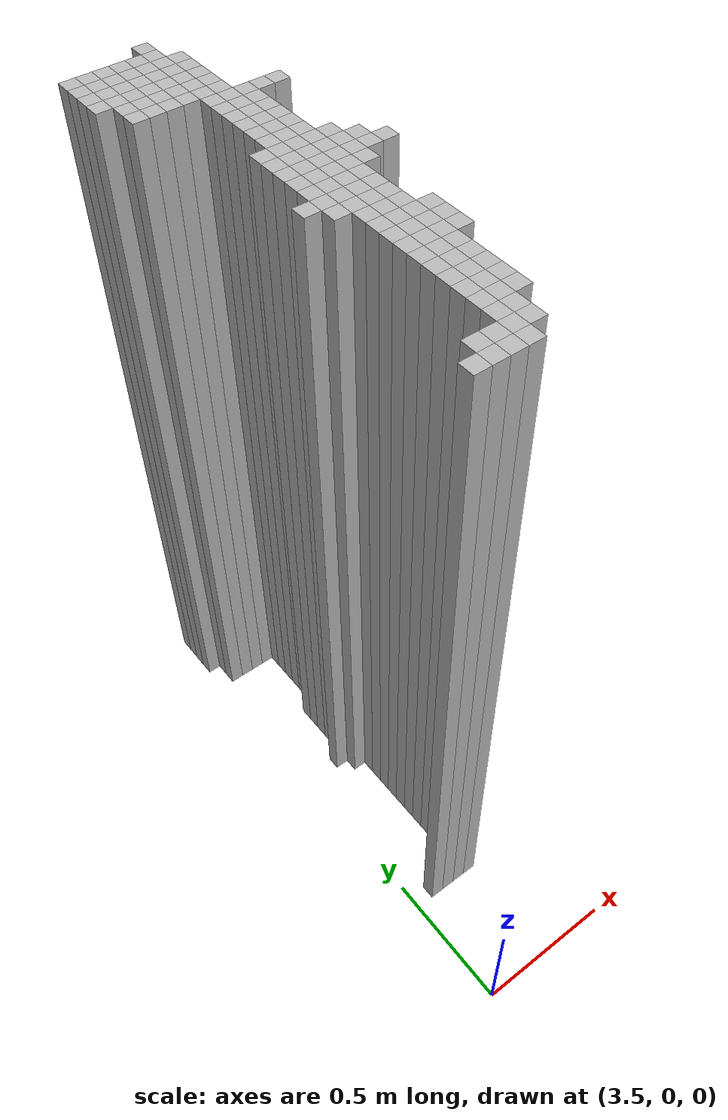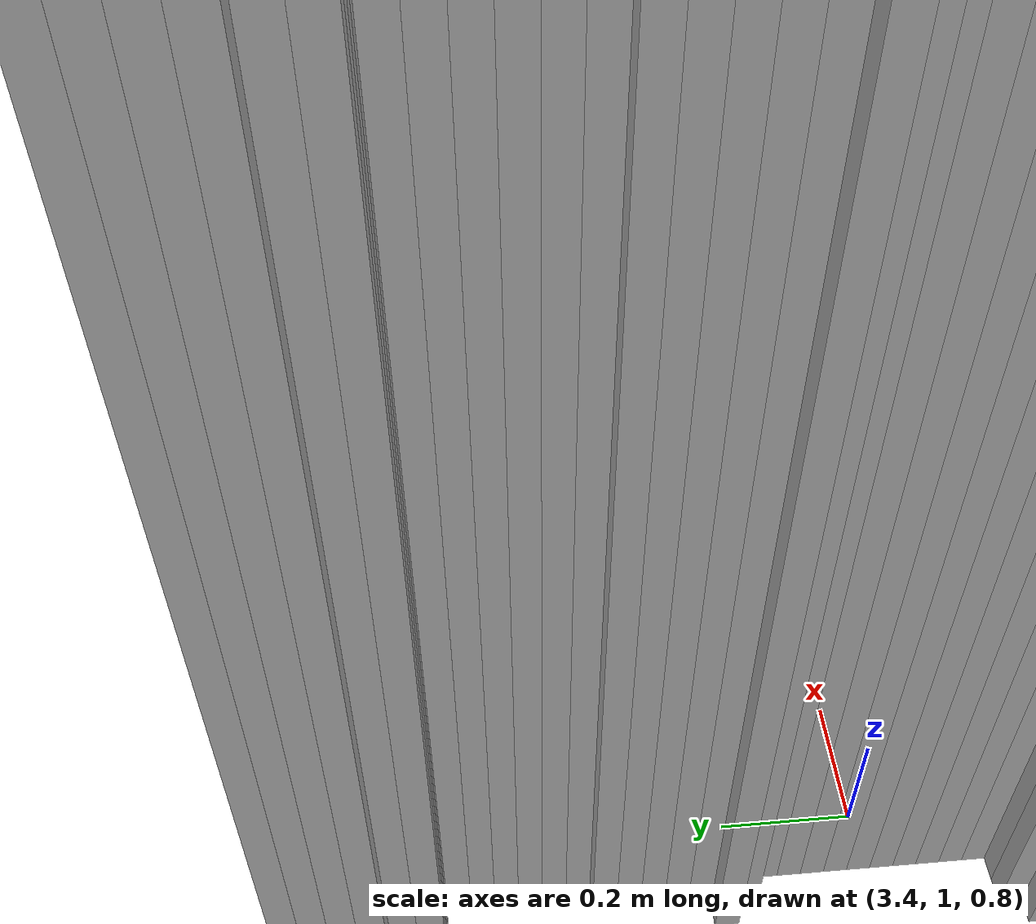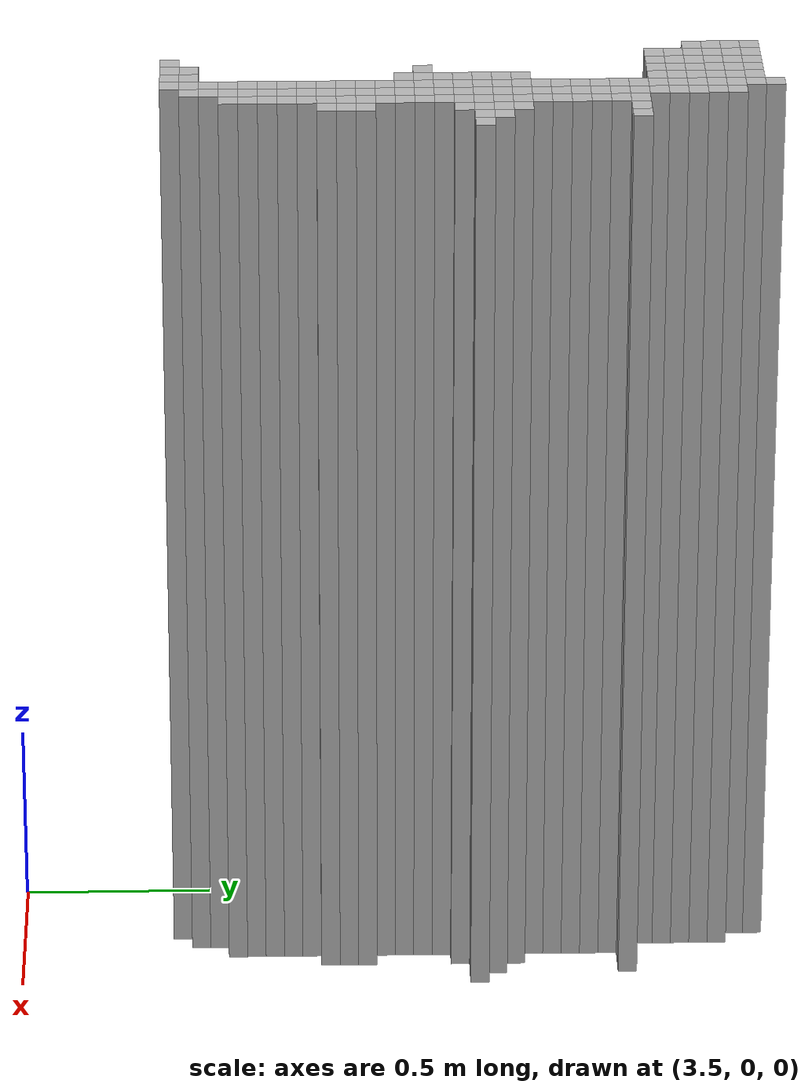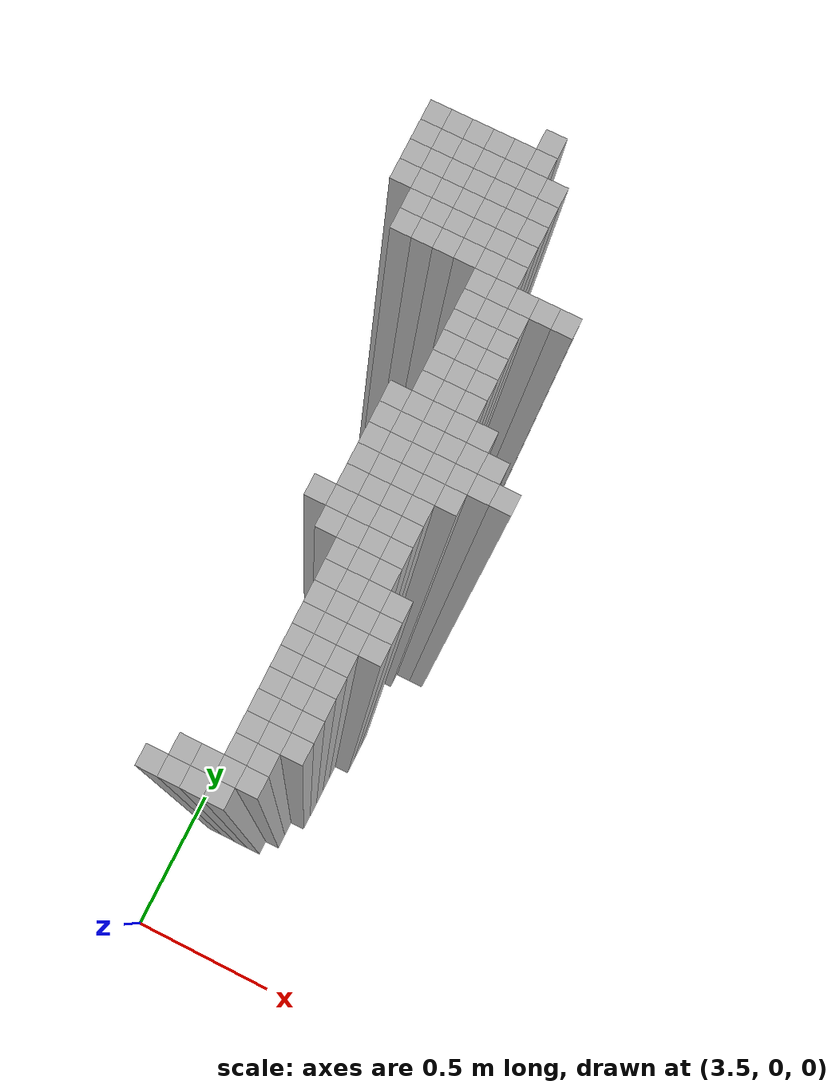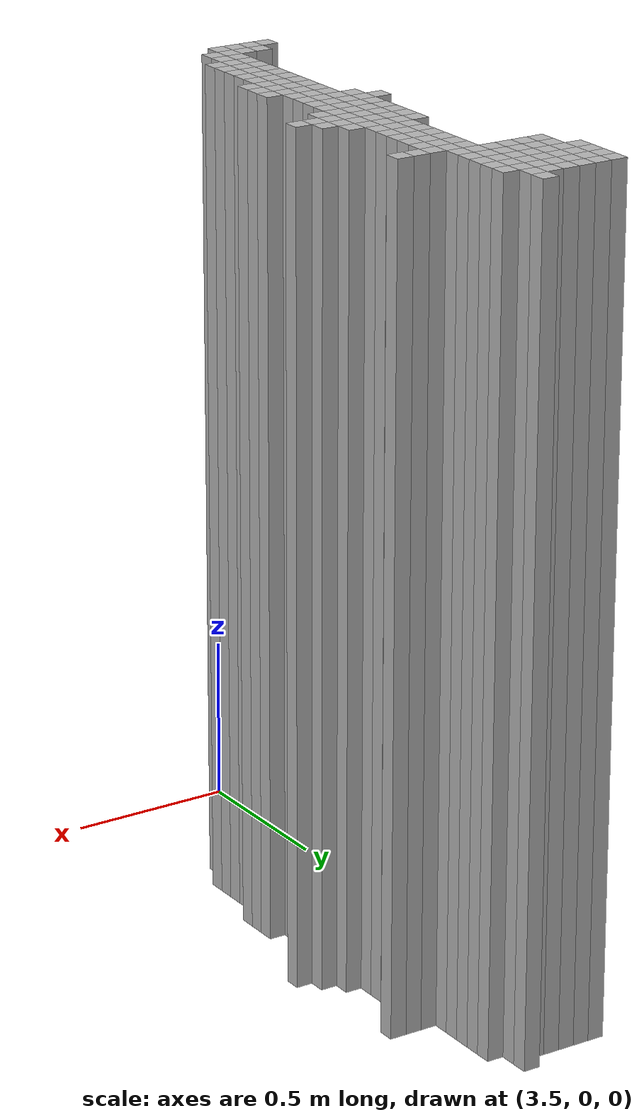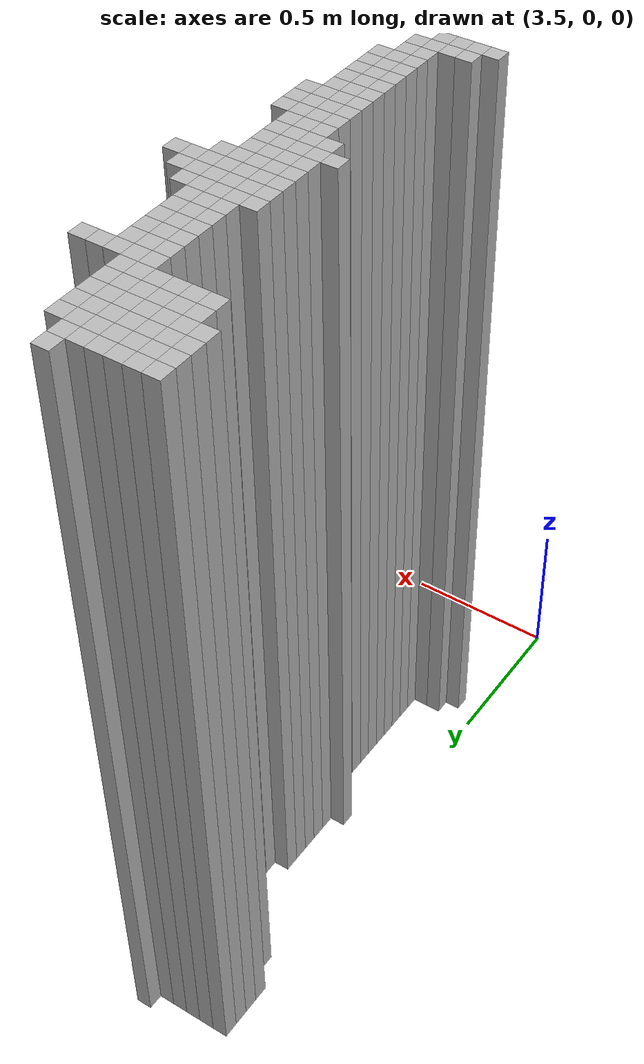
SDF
<sdf version="1.9">
 <world name="map_world">
  <model name="wall_298_114">
   <static>true</static>
   <pose>3.739 1.980 1.250 0 0 0</pose>
   <link name="link">
    <collision name="collision"><geometry><box><size>0.050 0.050 2.500</size></box></geometry></collision>
    <visual name="visual"><geometry><box><size>0.050 0.050 2.500</size></box></geometry></visual>
   </link>
  </model>
  <model name="wall_293_115">
   <static>true</static>
   <pose>3.489 1.930 1.250 0 0 0</pose>
   <link name="link">
    <collision name="collision"><geometry><box><size>0.050 0.050 2.500</size></box></geometry></collision>
    <visual name="visual"><geometry><box><size>0.050 0.050 2.500</size></box></geometry></visual>
   </link>
  </model>
  <model name="wall_294_115">
   <static>true</static>
   <pose>3.539 1.930 1.250 0 0 0</pose>
   <link name="link">
    <collision name="collision"><geometry><box><size>0.050 0.050 2.500</size></box></geometry></collision>
    <visual name="visual"><geometry><box><size>0.050 0.050 2.500</size></box></geometry></visual>
   </link>
  </model>
  <model name="wall_295_115">
   <static>true</static>
   <pose>3.589 1.930 1.250 0 0 0</pose>
   <link name="link">
    <collision name="collision"><geometry><box><size>0.050 0.050 2.500</size></box></geometry></collision>
    <visual name="visual"><geometry><box><size>0.050 0.050 2.500</size></box></geometry></visual>
   </link>
  </model>
  <model name="wall_296_115">
   <static>true</static>
   <pose>3.639 1.930 1.250 0 0 0</pose>
   <link name="link">
    <collision name="collision"><geometry><box><size>0.050 0.050 2.500</size></box></geometry></collision>
    <visual name="visual"><geometry><box><size>0.050 0.050 2.500</size></box></geometry></visual>
   </link>
  </model>
  <model name="wall_297_115">
   <static>true</static>
   <pose>3.689 1.930 1.250 0 0 0</pose>
   <link name="link">
    <collision name="collision"><geometry><box><size>0.050 0.050 2.500</size></box></geometry></collision>
    <visual name="visual"><geometry><box><size>0.050 0.050 2.500</size></box></geometry></visual>
   </link>
  </model>
  <model name="wall_298_115">
   <static>true</static>
   <pose>3.739 1.930 1.250 0 0 0</pose>
   <link name="link">
    <collision name="collision"><geometry><box><size>0.050 0.050 2.500</size></box></geometry></collision>
    <visual name="visual"><geometry><box><size>0.050 0.050 2.500</size></box></geometry></visual>
   </link>
  </model>
  <model name="wall_293_116">
   <static>true</static>
   <pose>3.489 1.880 1.250 0 0 0</pose>
   <link name="link">
    <collision name="collision"><geometry><box><size>0.050 0.050 2.500</size></box></geometry></collision>
    <visual name="visual"><geometry><box><size>0.050 0.050 2.500</size></box></geometry></visual>
   </link>
  </model>
  <model name="wall_294_116">
   <static>true</static>
   <pose>3.539 1.880 1.250 0 0 0</pose>
   <link name="link">
    <collision name="collision"><geometry><box><size>0.050 0.050 2.500</size></box></geometry></collision>
    <visual name="visual"><geometry><box><size>0.050 0.050 2.500</size></box></geometry></visual>
   </link>
  </model>
  <model name="wall_295_116">
   <static>true</static>
   <pose>3.589 1.880 1.250 0 0 0</pose>
   <link name="link">
    <collision name="collision"><geometry><box><size>0.050 0.050 2.500</size></box></geometry></collision>
    <visual name="visual"><geometry><box><size>0.050 0.050 2.500</size></box></geometry></visual>
   </link>
  </model>
  <model name="wall_296_116">
   <static>true</static>
   <pose>3.639 1.880 1.250 0 0 0</pose>
   <link name="link">
    <collision name="collision"><geometry><box><size>0.050 0.050 2.500</size></box></geometry></collision>
    <visual name="visual"><geometry><box><size>0.050 0.050 2.500</size></box></geometry></visual>
   </link>
  </model>
  <model name="wall_297_116">
   <static>true</static>
   <pose>3.689 1.880 1.250 0 0 0</pose>
   <link name="link">
    <collision name="collision"><geometry><box><size>0.050 0.050 2.500</size></box></geometry></collision>
    <visual name="visual"><geometry><box><size>0.050 0.050 2.500</size></box></geometry></visual>
   </link>
  </model>
  <model name="wall_298_116">
   <static>true</static>
   <pose>3.739 1.880 1.250 0 0 0</pose>
   <link name="link">
    <collision name="collision"><geometry><box><size>0.050 0.050 2.500</size></box></geometry></collision>
    <visual name="visual"><geometry><box><size>0.050 0.050 2.500</size></box></geometry></visual>
   </link>
  </model>
  <model name="wall_299_116">
   <static>true</static>
   <pose>3.789 1.880 1.250 0 0 0</pose>
   <link name="link">
    <collision name="collision"><geometry><box><size>0.050 0.050 2.500</size></box></geometry></collision>
    <visual name="visual"><geometry><box><size>0.050 0.050 2.500</size></box></geometry></visual>
   </link>
  </model>
  <model name="wall_293_117">
   <static>true</static>
   <pose>3.489 1.830 1.250 0 0 0</pose>
   <link name="link">
    <collision name="collision"><geometry><box><size>0.050 0.050 2.500</size></box></geometry></collision>
    <visual name="visual"><geometry><box><size>0.050 0.050 2.500</size></box></geometry></visual>
   </link>
  </model>
  <model name="wall_294_117">
   <static>true</static>
   <pose>3.539 1.830 1.250 0 0 0</pose>
   <link name="link">
    <collision name="collision"><geometry><box><size>0.050 0.050 2.500</size></box></geometry></collision>
    <visual name="visual"><geometry><box><size>0.050 0.050 2.500</size></box></geometry></visual>
   </link>
  </model>
  <model name="wall_295_117">
   <static>true</static>
   <pose>3.589 1.830 1.250 0 0 0</pose>
   <link name="link">
    <collision name="collision"><geometry><box><size>0.050 0.050 2.500</size></box></geometry></collision>
    <visual name="visual"><geometry><box><size>0.050 0.050 2.500</size></box></geometry></visual>
   </link>
  </model>
  <model name="wall_296_117">
   <static>true</static>
   <pose>3.639 1.830 1.250 0 0 0</pose>
   <link name="link">
    <collision name="collision"><geometry><box><size>0.050 0.050 2.500</size></box></geometry></collision>
    <visual name="visual"><geometry><box><size>0.050 0.050 2.500</size></box></geometry></visual>
   </link>
  </model>
  <model name="wall_297_117">
   <static>true</static>
   <pose>3.689 1.830 1.250 0 0 0</pose>
   <link name="link">
    <collision name="collision"><geometry><box><size>0.050 0.050 2.500</size></box></geometry></collision>
    <visual name="visual"><geometry><box><size>0.050 0.050 2.500</size></box></geometry></visual>
   </link>
  </model>
  <model name="wall_298_117">
   <static>true</static>
   <pose>3.739 1.830 1.250 0 0 0</pose>
   <link name="link">
    <collision name="collision"><geometry><box><size>0.050 0.050 2.500</size></box></geometry></collision>
    <visual name="visual"><geometry><box><size>0.050 0.050 2.500</size></box></geometry></visual>
   </link>
  </model>
  <model name="wall_299_117">
   <static>true</static>
   <pose>3.789 1.830 1.250 0 0 0</pose>
   <link name="link">
    <collision name="collision"><geometry><box><size>0.050 0.050 2.500</size></box></geometry></collision>
    <visual name="visual"><geometry><box><size>0.050 0.050 2.500</size></box></geometry></visual>
   </link>
  </model>
  <model name="wall_293_118">
   <static>true</static>
   <pose>3.489 1.780 1.250 0 0 0</pose>
   <link name="link">
    <collision name="collision"><geometry><box><size>0.050 0.050 2.500</size></box></geometry></collision>
    <visual name="visual"><geometry><box><size>0.050 0.050 2.500</size></box></geometry></visual>
   </link>
  </model>
  <model name="wall_294_118">
   <static>true</static>
   <pose>3.539 1.780 1.250 0 0 0</pose>
   <link name="link">
    <collision name="collision"><geometry><box><size>0.050 0.050 2.500</size></box></geometry></collision>
    <visual name="visual"><geometry><box><size>0.050 0.050 2.500</size></box></geometry></visual>
   </link>
  </model>
  <model name="wall_295_118">
   <static>true</static>
   <pose>3.589 1.780 1.250 0 0 0</pose>
   <link name="link">
    <collision name="collision"><geometry><box><size>0.050 0.050 2.500</size></box></geometry></collision>
    <visual name="visual"><geometry><box><size>0.050 0.050 2.500</size></box></geometry></visual>
   </link>
  </model>
  <model name="wall_296_118">
   <static>true</static>
   <pose>3.639 1.780 1.250 0 0 0</pose>
   <link name="link">
    <collision name="collision"><geometry><box><size>0.050 0.050 2.500</size></box></geometry></collision>
    <visual name="visual"><geometry><box><size>0.050 0.050 2.500</size></box></geometry></visual>
   </link>
  </model>
  <model name="wall_297_118">
   <static>true</static>
   <pose>3.689 1.780 1.250 0 0 0</pose>
   <link name="link">
    <collision name="collision"><geometry><box><size>0.050 0.050 2.500</size></box></geometry></collision>
    <visual name="visual"><geometry><box><size>0.050 0.050 2.500</size></box></geometry></visual>
   </link>
  </model>
  <model name="wall_298_118">
   <static>true</static>
   <pose>3.739 1.780 1.250 0 0 0</pose>
   <link name="link">
    <collision name="collision"><geometry><box><size>0.050 0.050 2.500</size></box></geometry></collision>
    <visual name="visual"><geometry><box><size>0.050 0.050 2.500</size></box></geometry></visual>
   </link>
  </model>
  <model name="wall_299_118">
   <static>true</static>
   <pose>3.789 1.780 1.250 0 0 0</pose>
   <link name="link">
    <collision name="collision"><geometry><box><size>0.050 0.050 2.500</size></box></geometry></collision>
    <visual name="visual"><geometry><box><size>0.050 0.050 2.500</size></box></geometry></visual>
   </link>
  </model>
  <model name="wall_294_119">
   <static>true</static>
   <pose>3.539 1.730 1.250 0 0 0</pose>
   <link name="link">
    <collision name="collision"><geometry><box><size>0.050 0.050 2.500</size></box></geometry></collision>
    <visual name="visual"><geometry><box><size>0.050 0.050 2.500</size></box></geometry></visual>
   </link>
  </model>
  <model name="wall_295_119">
   <static>true</static>
   <pose>3.589 1.730 1.250 0 0 0</pose>
   <link name="link">
    <collision name="collision"><geometry><box><size>0.050 0.050 2.500</size></box></geometry></collision>
    <visual name="visual"><geometry><box><size>0.050 0.050 2.500</size></box></geometry></visual>
   </link>
  </model>
  <model name="wall_296_119">
   <static>true</static>
   <pose>3.639 1.730 1.250 0 0 0</pose>
   <link name="link">
    <collision name="collision"><geometry><box><size>0.050 0.050 2.500</size></box></geometry></collision>
    <visual name="visual"><geometry><box><size>0.050 0.050 2.500</size></box></geometry></visual>
   </link>
  </model>
  <model name="wall_297_119">
   <static>true</static>
   <pose>3.689 1.730 1.250 0 0 0</pose>
   <link name="link">
    <collision name="collision"><geometry><box><size>0.050 0.050 2.500</size></box></geometry></collision>
    <visual name="visual"><geometry><box><size>0.050 0.050 2.500</size></box></geometry></visual>
   </link>
  </model>
  <model name="wall_298_119">
   <static>true</static>
   <pose>3.739 1.730 1.250 0 0 0</pose>
   <link name="link">
    <collision name="collision"><geometry><box><size>0.050 0.050 2.500</size></box></geometry></collision>
    <visual name="visual"><geometry><box><size>0.050 0.050 2.500</size></box></geometry></visual>
   </link>
  </model>
  <model name="wall_299_119">
   <static>true</static>
   <pose>3.789 1.730 1.250 0 0 0</pose>
   <link name="link">
    <collision name="collision"><geometry><box><size>0.050 0.050 2.500</size></box></geometry></collision>
    <visual name="visual"><geometry><box><size>0.050 0.050 2.500</size></box></geometry></visual>
   </link>
  </model>
  <model name="wall_294_120">
   <static>true</static>
   <pose>3.539 1.680 1.250 0 0 0</pose>
   <link name="link">
    <collision name="collision"><geometry><box><size>0.050 0.050 2.500</size></box></geometry></collision>
    <visual name="visual"><geometry><box><size>0.050 0.050 2.500</size></box></geometry></visual>
   </link>
  </model>
  <model name="wall_295_120">
   <static>true</static>
   <pose>3.589 1.680 1.250 0 0 0</pose>
   <link name="link">
    <collision name="collision"><geometry><box><size>0.050 0.050 2.500</size></box></geometry></collision>
    <visual name="visual"><geometry><box><size>0.050 0.050 2.500</size></box></geometry></visual>
   </link>
  </model>
  <model name="wall_296_120">
   <static>true</static>
   <pose>3.639 1.680 1.250 0 0 0</pose>
   <link name="link">
    <collision name="collision"><geometry><box><size>0.050 0.050 2.500</size></box></geometry></collision>
    <visual name="visual"><geometry><box><size>0.050 0.050 2.500</size></box></geometry></visual>
   </link>
  </model>
  <model name="wall_297_120">
   <static>true</static>
   <pose>3.689 1.680 1.250 0 0 0</pose>
   <link name="link">
    <collision name="collision"><geometry><box><size>0.050 0.050 2.500</size></box></geometry></collision>
    <visual name="visual"><geometry><box><size>0.050 0.050 2.500</size></box></geometry></visual>
   </link>
  </model>
  <model name="wall_298_120">
   <static>true</static>
   <pose>3.739 1.680 1.250 0 0 0</pose>
   <link name="link">
    <collision name="collision"><geometry><box><size>0.050 0.050 2.500</size></box></geometry></collision>
    <visual name="visual"><geometry><box><size>0.050 0.050 2.500</size></box></geometry></visual>
   </link>
  </model>
  <model name="wall_299_120">
   <static>true</static>
   <pose>3.789 1.680 1.250 0 0 0</pose>
   <link name="link">
    <collision name="collision"><geometry><box><size>0.050 0.050 2.500</size></box></geometry></collision>
    <visual name="visual"><geometry><box><size>0.050 0.050 2.500</size></box></geometry></visual>
   </link>
  </model>
  <model name="wall_298_121">
   <static>true</static>
   <pose>3.739 1.630 1.250 0 0 0</pose>
   <link name="link">
    <collision name="collision"><geometry><box><size>0.050 0.050 2.500</size></box></geometry></collision>
    <visual name="visual"><geometry><box><size>0.050 0.050 2.500</size></box></geometry></visual>
   </link>
  </model>
  <model name="wall_299_121">
   <static>true</static>
   <pose>3.789 1.630 1.250 0 0 0</pose>
   <link name="link">
    <collision name="collision"><geometry><box><size>0.050 0.050 2.500</size></box></geometry></collision>
    <visual name="visual"><geometry><box><size>0.050 0.050 2.500</size></box></geometry></visual>
   </link>
  </model>
  <model name="wall_300_121">
   <static>true</static>
   <pose>3.839 1.630 1.250 0 0 0</pose>
   <link name="link">
    <collision name="collision"><geometry><box><size>0.050 0.050 2.500</size></box></geometry></collision>
    <visual name="visual"><geometry><box><size>0.050 0.050 2.500</size></box></geometry></visual>
   </link>
  </model>
  <model name="wall_301_121">
   <static>true</static>
   <pose>3.889 1.630 1.250 0 0 0</pose>
   <link name="link">
    <collision name="collision"><geometry><box><size>0.050 0.050 2.500</size></box></geometry></collision>
    <visual name="visual"><geometry><box><size>0.050 0.050 2.500</size></box></geometry></visual>
   </link>
  </model>
  <model name="wall_302_121">
   <static>true</static>
   <pose>3.939 1.630 1.250 0 0 0</pose>
   <link name="link">
    <collision name="collision"><geometry><box><size>0.050 0.050 2.500</size></box></geometry></collision>
    <visual name="visual"><geometry><box><size>0.050 0.050 2.500</size></box></geometry></visual>
   </link>
  </model>
  <model name="wall_298_122">
   <static>true</static>
   <pose>3.739 1.580 1.250 0 0 0</pose>
   <link name="link">
    <collision name="collision"><geometry><box><size>0.050 0.050 2.500</size></box></geometry></collision>
    <visual name="visual"><geometry><box><size>0.050 0.050 2.500</size></box></geometry></visual>
   </link>
  </model>
  <model name="wall_299_122">
   <static>true</static>
   <pose>3.789 1.580 1.250 0 0 0</pose>
   <link name="link">
    <collision name="collision"><geometry><box><size>0.050 0.050 2.500</size></box></geometry></collision>
    <visual name="visual"><geometry><box><size>0.050 0.050 2.500</size></box></geometry></visual>
   </link>
  </model>
  <model name="wall_300_122">
   <static>true</static>
   <pose>3.839 1.580 1.250 0 0 0</pose>
   <link name="link">
    <collision name="collision"><geometry><box><size>0.050 0.050 2.500</size></box></geometry></collision>
    <visual name="visual"><geometry><box><size>0.050 0.050 2.500</size></box></geometry></visual>
   </link>
  </model>
  <model name="wall_298_123">
   <static>true</static>
   <pose>3.739 1.530 1.250 0 0 0</pose>
   <link name="link">
    <collision name="collision"><geometry><box><size>0.050 0.050 2.500</size></box></geometry></collision>
    <visual name="visual"><geometry><box><size>0.050 0.050 2.500</size></box></geometry></visual>
   </link>
  </model>
  <model name="wall_299_123">
   <static>true</static>
   <pose>3.789 1.530 1.250 0 0 0</pose>
   <link name="link">
    <collision name="collision"><geometry><box><size>0.050 0.050 2.500</size></box></geometry></collision>
    <visual name="visual"><geometry><box><size>0.050 0.050 2.500</size></box></geometry></visual>
   </link>
  </model>
  <model name="wall_300_123">
   <static>true</static>
   <pose>3.839 1.530 1.250 0 0 0</pose>
   <link name="link">
    <collision name="collision"><geometry><box><size>0.050 0.050 2.500</size></box></geometry></collision>
    <visual name="visual"><geometry><box><size>0.050 0.050 2.500</size></box></geometry></visual>
   </link>
  </model>
  <model name="wall_298_124">
   <static>true</static>
   <pose>3.739 1.480 1.250 0 0 0</pose>
   <link name="link">
    <collision name="collision"><geometry><box><size>0.050 0.050 2.500</size></box></geometry></collision>
    <visual name="visual"><geometry><box><size>0.050 0.050 2.500</size></box></geometry></visual>
   </link>
  </model>
  <model name="wall_299_124">
   <static>true</static>
   <pose>3.789 1.480 1.250 0 0 0</pose>
   <link name="link">
    <collision name="collision"><geometry><box><size>0.050 0.050 2.500</size></box></geometry></collision>
    <visual name="visual"><geometry><box><size>0.050 0.050 2.500</size></box></geometry></visual>
   </link>
  </model>
  <model name="wall_300_124">
   <static>true</static>
   <pose>3.839 1.480 1.250 0 0 0</pose>
   <link name="link">
    <collision name="collision"><geometry><box><size>0.050 0.050 2.500</size></box></geometry></collision>
    <visual name="visual"><geometry><box><size>0.050 0.050 2.500</size></box></geometry></visual>
   </link>
  </model>
  <model name="wall_298_125">
   <static>true</static>
   <pose>3.739 1.430 1.250 0 0 0</pose>
   <link name="link">
    <collision name="collision"><geometry><box><size>0.050 0.050 2.500</size></box></geometry></collision>
    <visual name="visual"><geometry><box><size>0.050 0.050 2.500</size></box></geometry></visual>
   </link>
  </model>
  <model name="wall_299_125">
   <static>true</static>
   <pose>3.789 1.430 1.250 0 0 0</pose>
   <link name="link">
    <collision name="collision"><geometry><box><size>0.050 0.050 2.500</size></box></geometry></collision>
    <visual name="visual"><geometry><box><size>0.050 0.050 2.500</size></box></geometry></visual>
   </link>
  </model>
  <model name="wall_300_125">
   <static>true</static>
   <pose>3.839 1.430 1.250 0 0 0</pose>
   <link name="link">
    <collision name="collision"><geometry><box><size>0.050 0.050 2.500</size></box></geometry></collision>
    <visual name="visual"><geometry><box><size>0.050 0.050 2.500</size></box></geometry></visual>
   </link>
  </model>
  <model name="wall_298_126">
   <static>true</static>
   <pose>3.739 1.380 1.250 0 0 0</pose>
   <link name="link">
    <collision name="collision"><geometry><box><size>0.050 0.050 2.500</size></box></geometry></collision>
    <visual name="visual"><geometry><box><size>0.050 0.050 2.500</size></box></geometry></visual>
   </link>
  </model>
  <model name="wall_299_126">
   <static>true</static>
   <pose>3.789 1.380 1.250 0 0 0</pose>
   <link name="link">
    <collision name="collision"><geometry><box><size>0.050 0.050 2.500</size></box></geometry></collision>
    <visual name="visual"><geometry><box><size>0.050 0.050 2.500</size></box></geometry></visual>
   </link>
  </model>
  <model name="wall_300_126">
   <static>true</static>
   <pose>3.839 1.380 1.250 0 0 0</pose>
   <link name="link">
    <collision name="collision"><geometry><box><size>0.050 0.050 2.500</size></box></geometry></collision>
    <visual name="visual"><geometry><box><size>0.050 0.050 2.500</size></box></geometry></visual>
   </link>
  </model>
  <model name="wall_297_127">
   <static>true</static>
   <pose>3.689 1.330 1.250 0 0 0</pose>
   <link name="link">
    <collision name="collision"><geometry><box><size>0.050 0.050 2.500</size></box></geometry></collision>
    <visual name="visual"><geometry><box><size>0.050 0.050 2.500</size></box></geometry></visual>
   </link>
  </model>
  <model name="wall_298_127">
   <static>true</static>
   <pose>3.739 1.330 1.250 0 0 0</pose>
   <link name="link">
    <collision name="collision"><geometry><box><size>0.050 0.050 2.500</size></box></geometry></collision>
    <visual name="visual"><geometry><box><size>0.050 0.050 2.500</size></box></geometry></visual>
   </link>
  </model>
  <model name="wall_299_127">
   <static>true</static>
   <pose>3.789 1.330 1.250 0 0 0</pose>
   <link name="link">
    <collision name="collision"><geometry><box><size>0.050 0.050 2.500</size></box></geometry></collision>
    <visual name="visual"><geometry><box><size>0.050 0.050 2.500</size></box></geometry></visual>
   </link>
  </model>
  <model name="wall_300_127">
   <static>true</static>
   <pose>3.839 1.330 1.250 0 0 0</pose>
   <link name="link">
    <collision name="collision"><geometry><box><size>0.050 0.050 2.500</size></box></geometry></collision>
    <visual name="visual"><geometry><box><size>0.050 0.050 2.500</size></box></geometry></visual>
   </link>
  </model>
  <model name="wall_301_127">
   <static>true</static>
   <pose>3.889 1.330 1.250 0 0 0</pose>
   <link name="link">
    <collision name="collision"><geometry><box><size>0.050 0.050 2.500</size></box></geometry></collision>
    <visual name="visual"><geometry><box><size>0.050 0.050 2.500</size></box></geometry></visual>
   </link>
  </model>
  <model name="wall_297_128">
   <static>true</static>
   <pose>3.689 1.280 1.250 0 0 0</pose>
   <link name="link">
    <collision name="collision"><geometry><box><size>0.050 0.050 2.500</size></box></geometry></collision>
    <visual name="visual"><geometry><box><size>0.050 0.050 2.500</size></box></geometry></visual>
   </link>
  </model>
  <model name="wall_298_128">
   <static>true</static>
   <pose>3.739 1.280 1.250 0 0 0</pose>
   <link name="link">
    <collision name="collision"><geometry><box><size>0.050 0.050 2.500</size></box></geometry></collision>
    <visual name="visual"><geometry><box><size>0.050 0.050 2.500</size></box></geometry></visual>
   </link>
  </model>
  <model name="wall_299_128">
   <static>true</static>
   <pose>3.789 1.280 1.250 0 0 0</pose>
   <link name="link">
    <collision name="collision"><geometry><box><size>0.050 0.050 2.500</size></box></geometry></collision>
    <visual name="visual"><geometry><box><size>0.050 0.050 2.500</size></box></geometry></visual>
   </link>
  </model>
  <model name="wall_300_128">
   <static>true</static>
   <pose>3.839 1.280 1.250 0 0 0</pose>
   <link name="link">
    <collision name="collision"><geometry><box><size>0.050 0.050 2.500</size></box></geometry></collision>
    <visual name="visual"><geometry><box><size>0.050 0.050 2.500</size></box></geometry></visual>
   </link>
  </model>
  <model name="wall_301_128">
   <static>true</static>
   <pose>3.889 1.280 1.250 0 0 0</pose>
   <link name="link">
    <collision name="collision"><geometry><box><size>0.050 0.050 2.500</size></box></geometry></collision>
    <visual name="visual"><geometry><box><size>0.050 0.050 2.500</size></box></geometry></visual>
   </link>
  </model>
  <model name="wall_302_128">
   <static>true</static>
   <pose>3.939 1.280 1.250 0 0 0</pose>
   <link name="link">
    <collision name="collision"><geometry><box><size>0.050 0.050 2.500</size></box></geometry></collision>
    <visual name="visual"><geometry><box><size>0.050 0.050 2.500</size></box></geometry></visual>
   </link>
  </model>
  <model name="wall_297_129">
   <static>true</static>
   <pose>3.689 1.230 1.250 0 0 0</pose>
   <link name="link">
    <collision name="collision"><geometry><box><size>0.050 0.050 2.500</size></box></geometry></collision>
    <visual name="visual"><geometry><box><size>0.050 0.050 2.500</size></box></geometry></visual>
   </link>
  </model>
  <model name="wall_298_129">
   <static>true</static>
   <pose>3.739 1.230 1.250 0 0 0</pose>
   <link name="link">
    <collision name="collision"><geometry><box><size>0.050 0.050 2.500</size></box></geometry></collision>
    <visual name="visual"><geometry><box><size>0.050 0.050 2.500</size></box></geometry></visual>
   </link>
  </model>
  <model name="wall_299_129">
   <static>true</static>
   <pose>3.789 1.230 1.250 0 0 0</pose>
   <link name="link">
    <collision name="collision"><geometry><box><size>0.050 0.050 2.500</size></box></geometry></collision>
    <visual name="visual"><geometry><box><size>0.050 0.050 2.500</size></box></geometry></visual>
   </link>
  </model>
  <model name="wall_300_129">
   <static>true</static>
   <pose>3.839 1.230 1.250 0 0 0</pose>
   <link name="link">
    <collision name="collision"><geometry><box><size>0.050 0.050 2.500</size></box></geometry></collision>
    <visual name="visual"><geometry><box><size>0.050 0.050 2.500</size></box></geometry></visual>
   </link>
  </model>
  <model name="wall_301_129">
   <static>true</static>
   <pose>3.889 1.230 1.250 0 0 0</pose>
   <link name="link">
    <collision name="collision"><geometry><box><size>0.050 0.050 2.500</size></box></geometry></collision>
    <visual name="visual"><geometry><box><size>0.050 0.050 2.500</size></box></geometry></visual>
   </link>
  </model>
  <model name="wall_302_129">
   <static>true</static>
   <pose>3.939 1.230 1.250 0 0 0</pose>
   <link name="link">
    <collision name="collision"><geometry><box><size>0.050 0.050 2.500</size></box></geometry></collision>
    <visual name="visual"><geometry><box><size>0.050 0.050 2.500</size></box></geometry></visual>
   </link>
  </model>
  <model name="wall_303_129">
   <static>true</static>
   <pose>3.989 1.230 1.250 0 0 0</pose>
   <link name="link">
    <collision name="collision"><geometry><box><size>0.050 0.050 2.500</size></box></geometry></collision>
    <visual name="visual"><geometry><box><size>0.050 0.050 2.500</size></box></geometry></visual>
   </link>
  </model>
  <model name="wall_297_130">
   <static>true</static>
   <pose>3.689 1.180 1.250 0 0 0</pose>
   <link name="link">
    <collision name="collision"><geometry><box><size>0.050 0.050 2.500</size></box></geometry></collision>
    <visual name="visual"><geometry><box><size>0.050 0.050 2.500</size></box></geometry></visual>
   </link>
  </model>
  <model name="wall_298_130">
   <static>true</static>
   <pose>3.739 1.180 1.250 0 0 0</pose>
   <link name="link">
    <collision name="collision"><geometry><box><size>0.050 0.050 2.500</size></box></geometry></collision>
    <visual name="visual"><geometry><box><size>0.050 0.050 2.500</size></box></geometry></visual>
   </link>
  </model>
  <model name="wall_299_130">
   <static>true</static>
   <pose>3.789 1.180 1.250 0 0 0</pose>
   <link name="link">
    <collision name="collision"><geometry><box><size>0.050 0.050 2.500</size></box></geometry></collision>
    <visual name="visual"><geometry><box><size>0.050 0.050 2.500</size></box></geometry></visual>
   </link>
  </model>
  <model name="wall_300_130">
   <static>true</static>
   <pose>3.839 1.180 1.250 0 0 0</pose>
   <link name="link">
    <collision name="collision"><geometry><box><size>0.050 0.050 2.500</size></box></geometry></collision>
    <visual name="visual"><geometry><box><size>0.050 0.050 2.500</size></box></geometry></visual>
   </link>
  </model>
  <model name="wall_301_130">
   <static>true</static>
   <pose>3.889 1.180 1.250 0 0 0</pose>
   <link name="link">
    <collision name="collision"><geometry><box><size>0.050 0.050 2.500</size></box></geometry></collision>
    <visual name="visual"><geometry><box><size>0.050 0.050 2.500</size></box></geometry></visual>
   </link>
  </model>
  <model name="wall_297_131">
   <static>true</static>
   <pose>3.689 1.130 1.250 0 0 0</pose>
   <link name="link">
    <collision name="collision"><geometry><box><size>0.050 0.050 2.500</size></box></geometry></collision>
    <visual name="visual"><geometry><box><size>0.050 0.050 2.500</size></box></geometry></visual>
   </link>
  </model>
  <model name="wall_298_131">
   <static>true</static>
   <pose>3.739 1.130 1.250 0 0 0</pose>
   <link name="link">
    <collision name="collision"><geometry><box><size>0.050 0.050 2.500</size></box></geometry></collision>
    <visual name="visual"><geometry><box><size>0.050 0.050 2.500</size></box></geometry></visual>
   </link>
  </model>
  <model name="wall_299_131">
   <static>true</static>
   <pose>3.789 1.130 1.250 0 0 0</pose>
   <link name="link">
    <collision name="collision"><geometry><box><size>0.050 0.050 2.500</size></box></geometry></collision>
    <visual name="visual"><geometry><box><size>0.050 0.050 2.500</size></box></geometry></visual>
   </link>
  </model>
  <model name="wall_300_131">
   <static>true</static>
   <pose>3.839 1.130 1.250 0 0 0</pose>
   <link name="link">
    <collision name="collision"><geometry><box><size>0.050 0.050 2.500</size></box></geometry></collision>
    <visual name="visual"><geometry><box><size>0.050 0.050 2.500</size></box></geometry></visual>
   </link>
  </model>
  <model name="wall_296_132">
   <static>true</static>
   <pose>3.639 1.080 1.250 0 0 0</pose>
   <link name="link">
    <collision name="collision"><geometry><box><size>0.050 0.050 2.500</size></box></geometry></collision>
    <visual name="visual"><geometry><box><size>0.050 0.050 2.500</size></box></geometry></visual>
   </link>
  </model>
  <model name="wall_297_132">
   <static>true</static>
   <pose>3.689 1.080 1.250 0 0 0</pose>
   <link name="link">
    <collision name="collision"><geometry><box><size>0.050 0.050 2.500</size></box></geometry></collision>
    <visual name="visual"><geometry><box><size>0.050 0.050 2.500</size></box></geometry></visual>
   </link>
  </model>
  <model name="wall_298_132">
   <static>true</static>
   <pose>3.739 1.080 1.250 0 0 0</pose>
   <link name="link">
    <collision name="collision"><geometry><box><size>0.050 0.050 2.500</size></box></geometry></collision>
    <visual name="visual"><geometry><box><size>0.050 0.050 2.500</size></box></geometry></visual>
   </link>
  </model>
  <model name="wall_299_132">
   <static>true</static>
   <pose>3.789 1.080 1.250 0 0 0</pose>
   <link name="link">
    <collision name="collision"><geometry><box><size>0.050 0.050 2.500</size></box></geometry></collision>
    <visual name="visual"><geometry><box><size>0.050 0.050 2.500</size></box></geometry></visual>
   </link>
  </model>
  <model name="wall_300_132">
   <static>true</static>
   <pose>3.839 1.080 1.250 0 0 0</pose>
   <link name="link">
    <collision name="collision"><geometry><box><size>0.050 0.050 2.500</size></box></geometry></collision>
    <visual name="visual"><geometry><box><size>0.050 0.050 2.500</size></box></geometry></visual>
   </link>
  </model>
  <model name="wall_297_133">
   <static>true</static>
   <pose>3.689 1.030 1.250 0 0 0</pose>
   <link name="link">
    <collision name="collision"><geometry><box><size>0.050 0.050 2.500</size></box></geometry></collision>
    <visual name="visual"><geometry><box><size>0.050 0.050 2.500</size></box></geometry></visual>
   </link>
  </model>
  <model name="wall_298_133">
   <static>true</static>
   <pose>3.739 1.030 1.250 0 0 0</pose>
   <link name="link">
    <collision name="collision"><geometry><box><size>0.050 0.050 2.500</size></box></geometry></collision>
    <visual name="visual"><geometry><box><size>0.050 0.050 2.500</size></box></geometry></visual>
   </link>
  </model>
  <model name="wall_299_133">
   <static>true</static>
   <pose>3.789 1.030 1.250 0 0 0</pose>
   <link name="link">
    <collision name="collision"><geometry><box><size>0.050 0.050 2.500</size></box></geometry></collision>
    <visual name="visual"><geometry><box><size>0.050 0.050 2.500</size></box></geometry></visual>
   </link>
  </model>
  <model name="wall_300_133">
   <static>true</static>
   <pose>3.839 1.030 1.250 0 0 0</pose>
   <link name="link">
    <collision name="collision"><geometry><box><size>0.050 0.050 2.500</size></box></geometry></collision>
    <visual name="visual"><geometry><box><size>0.050 0.050 2.500</size></box></geometry></visual>
   </link>
  </model>
  <model name="wall_298_134">
   <static>true</static>
   <pose>3.739 0.980 1.250 0 0 0</pose>
   <link name="link">
    <collision name="collision"><geometry><box><size>0.050 0.050 2.500</size></box></geometry></collision>
    <visual name="visual"><geometry><box><size>0.050 0.050 2.500</size></box></geometry></visual>
   </link>
  </model>
  <model name="wall_299_134">
   <static>true</static>
   <pose>3.789 0.980 1.250 0 0 0</pose>
   <link name="link">
    <collision name="collision"><geometry><box><size>0.050 0.050 2.500</size></box></geometry></collision>
    <visual name="visual"><geometry><box><size>0.050 0.050 2.500</size></box></geometry></visual>
   </link>
  </model>
  <model name="wall_300_134">
   <static>true</static>
   <pose>3.839 0.980 1.250 0 0 0</pose>
   <link name="link">
    <collision name="collision"><geometry><box><size>0.050 0.050 2.500</size></box></geometry></collision>
    <visual name="visual"><geometry><box><size>0.050 0.050 2.500</size></box></geometry></visual>
   </link>
  </model>
  <model name="wall_298_135">
   <static>true</static>
   <pose>3.739 0.930 1.250 0 0 0</pose>
   <link name="link">
    <collision name="collision"><geometry><box><size>0.050 0.050 2.500</size></box></geometry></collision>
    <visual name="visual"><geometry><box><size>0.050 0.050 2.500</size></box></geometry></visual>
   </link>
  </model>
  <model name="wall_299_135">
   <static>true</static>
   <pose>3.789 0.930 1.250 0 0 0</pose>
   <link name="link">
    <collision name="collision"><geometry><box><size>0.050 0.050 2.500</size></box></geometry></collision>
    <visual name="visual"><geometry><box><size>0.050 0.050 2.500</size></box></geometry></visual>
   </link>
  </model>
  <model name="wall_300_135">
   <static>true</static>
   <pose>3.839 0.930 1.250 0 0 0</pose>
   <link name="link">
    <collision name="collision"><geometry><box><size>0.050 0.050 2.500</size></box></geometry></collision>
    <visual name="visual"><geometry><box><size>0.050 0.050 2.500</size></box></geometry></visual>
   </link>
  </model>
  <model name="wall_301_135">
   <static>true</static>
   <pose>3.889 0.930 1.250 0 0 0</pose>
   <link name="link">
    <collision name="collision"><geometry><box><size>0.050 0.050 2.500</size></box></geometry></collision>
    <visual name="visual"><geometry><box><size>0.050 0.050 2.500</size></box></geometry></visual>
   </link>
  </model>
  <model name="wall_298_136">
   <static>true</static>
   <pose>3.739 0.880 1.250 0 0 0</pose>
   <link name="link">
    <collision name="collision"><geometry><box><size>0.050 0.050 2.500</size></box></geometry></collision>
    <visual name="visual"><geometry><box><size>0.050 0.050 2.500</size></box></geometry></visual>
   </link>
  </model>
  <model name="wall_299_136">
   <static>true</static>
   <pose>3.789 0.880 1.250 0 0 0</pose>
   <link name="link">
    <collision name="collision"><geometry><box><size>0.050 0.050 2.500</size></box></geometry></collision>
    <visual name="visual"><geometry><box><size>0.050 0.050 2.500</size></box></geometry></visual>
   </link>
  </model>
  <model name="wall_300_136">
   <static>true</static>
   <pose>3.839 0.880 1.250 0 0 0</pose>
   <link name="link">
    <collision name="collision"><geometry><box><size>0.050 0.050 2.500</size></box></geometry></collision>
    <visual name="visual"><geometry><box><size>0.050 0.050 2.500</size></box></geometry></visual>
   </link>
  </model>
  <model name="wall_301_136">
   <static>true</static>
   <pose>3.889 0.880 1.250 0 0 0</pose>
   <link name="link">
    <collision name="collision"><geometry><box><size>0.050 0.050 2.500</size></box></geometry></collision>
    <visual name="visual"><geometry><box><size>0.050 0.050 2.500</size></box></geometry></visual>
   </link>
  </model>
  <model name="wall_298_137">
   <static>true</static>
   <pose>3.739 0.830 1.250 0 0 0</pose>
   <link name="link">
    <collision name="collision"><geometry><box><size>0.050 0.050 2.500</size></box></geometry></collision>
    <visual name="visual"><geometry><box><size>0.050 0.050 2.500</size></box></geometry></visual>
   </link>
  </model>
  <model name="wall_299_137">
   <static>true</static>
   <pose>3.789 0.830 1.250 0 0 0</pose>
   <link name="link">
    <collision name="collision"><geometry><box><size>0.050 0.050 2.500</size></box></geometry></collision>
    <visual name="visual"><geometry><box><size>0.050 0.050 2.500</size></box></geometry></visual>
   </link>
  </model>
  <model name="wall_300_137">
   <static>true</static>
   <pose>3.839 0.830 1.250 0 0 0</pose>
   <link name="link">
    <collision name="collision"><geometry><box><size>0.050 0.050 2.500</size></box></geometry></collision>
    <visual name="visual"><geometry><box><size>0.050 0.050 2.500</size></box></geometry></visual>
   </link>
  </model>
  <model name="wall_301_137">
   <static>true</static>
   <pose>3.889 0.830 1.250 0 0 0</pose>
   <link name="link">
    <collision name="collision"><geometry><box><size>0.050 0.050 2.500</size></box></geometry></collision>
    <visual name="visual"><geometry><box><size>0.050 0.050 2.500</size></box></geometry></visual>
   </link>
  </model>
  <model name="wall_298_138">
   <static>true</static>
   <pose>3.739 0.780 1.250 0 0 0</pose>
   <link name="link">
    <collision name="collision"><geometry><box><size>0.050 0.050 2.500</size></box></geometry></collision>
    <visual name="visual"><geometry><box><size>0.050 0.050 2.500</size></box></geometry></visual>
   </link>
  </model>
  <model name="wall_299_138">
   <static>true</static>
   <pose>3.789 0.780 1.250 0 0 0</pose>
   <link name="link">
    <collision name="collision"><geometry><box><size>0.050 0.050 2.500</size></box></geometry></collision>
    <visual name="visual"><geometry><box><size>0.050 0.050 2.500</size></box></geometry></visual>
   </link>
  </model>
  <model name="wall_300_138">
   <static>true</static>
   <pose>3.839 0.780 1.250 0 0 0</pose>
   <link name="link">
    <collision name="collision"><geometry><box><size>0.050 0.050 2.500</size></box></geometry></collision>
    <visual name="visual"><geometry><box><size>0.050 0.050 2.500</size></box></geometry></visual>
   </link>
  </model>
  <model name="wall_298_139">
   <static>true</static>
   <pose>3.739 0.730 1.250 0 0 0</pose>
   <link name="link">
    <collision name="collision"><geometry><box><size>0.050 0.050 2.500</size></box></geometry></collision>
    <visual name="visual"><geometry><box><size>0.050 0.050 2.500</size></box></geometry></visual>
   </link>
  </model>
  <model name="wall_299_139">
   <static>true</static>
   <pose>3.789 0.730 1.250 0 0 0</pose>
   <link name="link">
    <collision name="collision"><geometry><box><size>0.050 0.050 2.500</size></box></geometry></collision>
    <visual name="visual"><geometry><box><size>0.050 0.050 2.500</size></box></geometry></visual>
   </link>
  </model>
  <model name="wall_300_139">
   <static>true</static>
   <pose>3.839 0.730 1.250 0 0 0</pose>
   <link name="link">
    <collision name="collision"><geometry><box><size>0.050 0.050 2.500</size></box></geometry></collision>
    <visual name="visual"><geometry><box><size>0.050 0.050 2.500</size></box></geometry></visual>
   </link>
  </model>
  <model name="wall_298_140">
   <static>true</static>
   <pose>3.739 0.680 1.250 0 0 0</pose>
   <link name="link">
    <collision name="collision"><geometry><box><size>0.050 0.050 2.500</size></box></geometry></collision>
    <visual name="visual"><geometry><box><size>0.050 0.050 2.500</size></box></geometry></visual>
   </link>
  </model>
  <model name="wall_299_140">
   <static>true</static>
   <pose>3.789 0.680 1.250 0 0 0</pose>
   <link name="link">
    <collision name="collision"><geometry><box><size>0.050 0.050 2.500</size></box></geometry></collision>
    <visual name="visual"><geometry><box><size>0.050 0.050 2.500</size></box></geometry></visual>
   </link>
  </model>
  <model name="wall_300_140">
   <static>true</static>
   <pose>3.839 0.680 1.250 0 0 0</pose>
   <link name="link">
    <collision name="collision"><geometry><box><size>0.050 0.050 2.500</size></box></geometry></collision>
    <visual name="visual"><geometry><box><size>0.050 0.050 2.500</size></box></geometry></visual>
   </link>
  </model>
  <model name="wall_298_141">
   <static>true</static>
   <pose>3.739 0.630 1.250 0 0 0</pose>
   <link name="link">
    <collision name="collision"><geometry><box><size>0.050 0.050 2.500</size></box></geometry></collision>
    <visual name="visual"><geometry><box><size>0.050 0.050 2.500</size></box></geometry></visual>
   </link>
  </model>
  <model name="wall_299_141">
   <static>true</static>
   <pose>3.789 0.630 1.250 0 0 0</pose>
   <link name="link">
    <collision name="collision"><geometry><box><size>0.050 0.050 2.500</size></box></geometry></collision>
    <visual name="visual"><geometry><box><size>0.050 0.050 2.500</size></box></geometry></visual>
   </link>
  </model>
  <model name="wall_300_141">
   <static>true</static>
   <pose>3.839 0.630 1.250 0 0 0</pose>
   <link name="link">
    <collision name="collision"><geometry><box><size>0.050 0.050 2.500</size></box></geometry></collision>
    <visual name="visual"><geometry><box><size>0.050 0.050 2.500</size></box></geometry></visual>
   </link>
  </model>
  <model name="wall_298_142">
   <static>true</static>
   <pose>3.739 0.580 1.250 0 0 0</pose>
   <link name="link">
    <collision name="collision"><geometry><box><size>0.050 0.050 2.500</size></box></geometry></collision>
    <visual name="visual"><geometry><box><size>0.050 0.050 2.500</size></box></geometry></visual>
   </link>
  </model>
  <model name="wall_299_142">
   <static>true</static>
   <pose>3.789 0.580 1.250 0 0 0</pose>
   <link name="link">
    <collision name="collision"><geometry><box><size>0.050 0.050 2.500</size></box></geometry></collision>
    <visual name="visual"><geometry><box><size>0.050 0.050 2.500</size></box></geometry></visual>
   </link>
  </model>
  <model name="wall_300_142">
   <static>true</static>
   <pose>3.839 0.580 1.250 0 0 0</pose>
   <link name="link">
    <collision name="collision"><geometry><box><size>0.050 0.050 2.500</size></box></geometry></collision>
    <visual name="visual"><geometry><box><size>0.050 0.050 2.500</size></box></geometry></visual>
   </link>
  </model>
  <model name="wall_298_143">
   <static>true</static>
   <pose>3.739 0.530 1.250 0 0 0</pose>
   <link name="link">
    <collision name="collision"><geometry><box><size>0.050 0.050 2.500</size></box></geometry></collision>
    <visual name="visual"><geometry><box><size>0.050 0.050 2.500</size></box></geometry></visual>
   </link>
  </model>
  <model name="wall_299_143">
   <static>true</static>
   <pose>3.789 0.530 1.250 0 0 0</pose>
   <link name="link">
    <collision name="collision"><geometry><box><size>0.050 0.050 2.500</size></box></geometry></collision>
    <visual name="visual"><geometry><box><size>0.050 0.050 2.500</size></box></geometry></visual>
   </link>
  </model>
  <model name="wall_296_144">
   <static>true</static>
   <pose>3.639 0.480 1.250 0 0 0</pose>
   <link name="link">
    <collision name="collision"><geometry><box><size>0.050 0.050 2.500</size></box></geometry></collision>
    <visual name="visual"><geometry><box><size>0.050 0.050 2.500</size></box></geometry></visual>
   </link>
  </model>
  <model name="wall_297_144">
   <static>true</static>
   <pose>3.689 0.480 1.250 0 0 0</pose>
   <link name="link">
    <collision name="collision"><geometry><box><size>0.050 0.050 2.500</size></box></geometry></collision>
    <visual name="visual"><geometry><box><size>0.050 0.050 2.500</size></box></geometry></visual>
   </link>
  </model>
  <model name="wall_298_144">
   <static>true</static>
   <pose>3.739 0.480 1.250 0 0 0</pose>
   <link name="link">
    <collision name="collision"><geometry><box><size>0.050 0.050 2.500</size></box></geometry></collision>
    <visual name="visual"><geometry><box><size>0.050 0.050 2.500</size></box></geometry></visual>
   </link>
  </model>
  <model name="wall_299_144">
   <static>true</static>
   <pose>3.789 0.480 1.250 0 0 0</pose>
   <link name="link">
    <collision name="collision"><geometry><box><size>0.050 0.050 2.500</size></box></geometry></collision>
    <visual name="visual"><geometry><box><size>0.050 0.050 2.500</size></box></geometry></visual>
   </link>
  </model>
  <model name="wall_295_145">
   <static>true</static>
   <pose>3.589 0.430 1.250 0 0 0</pose>
   <link name="link">
    <collision name="collision"><geometry><box><size>0.050 0.050 2.500</size></box></geometry></collision>
    <visual name="visual"><geometry><box><size>0.050 0.050 2.500</size></box></geometry></visual>
   </link>
  </model>
  <model name="wall_296_145">
   <static>true</static>
   <pose>3.639 0.430 1.250 0 0 0</pose>
   <link name="link">
    <collision name="collision"><geometry><box><size>0.050 0.050 2.500</size></box></geometry></collision>
    <visual name="visual"><geometry><box><size>0.050 0.050 2.500</size></box></geometry></visual>
   </link>
  </model>
  <model name="wall_297_145">
   <static>true</static>
   <pose>3.689 0.430 1.250 0 0 0</pose>
   <link name="link">
    <collision name="collision"><geometry><box><size>0.050 0.050 2.500</size></box></geometry></collision>
    <visual name="visual"><geometry><box><size>0.050 0.050 2.500</size></box></geometry></visual>
   </link>
  </model>
  <model name="wall_298_145">
   <static>true</static>
   <pose>3.739 0.430 1.250 0 0 0</pose>
   <link name="link">
    <collision name="collision"><geometry><box><size>0.050 0.050 2.500</size></box></geometry></collision>
    <visual name="visual"><geometry><box><size>0.050 0.050 2.500</size></box></geometry></visual>
   </link>
  </model>
 </world>
</sdf>
